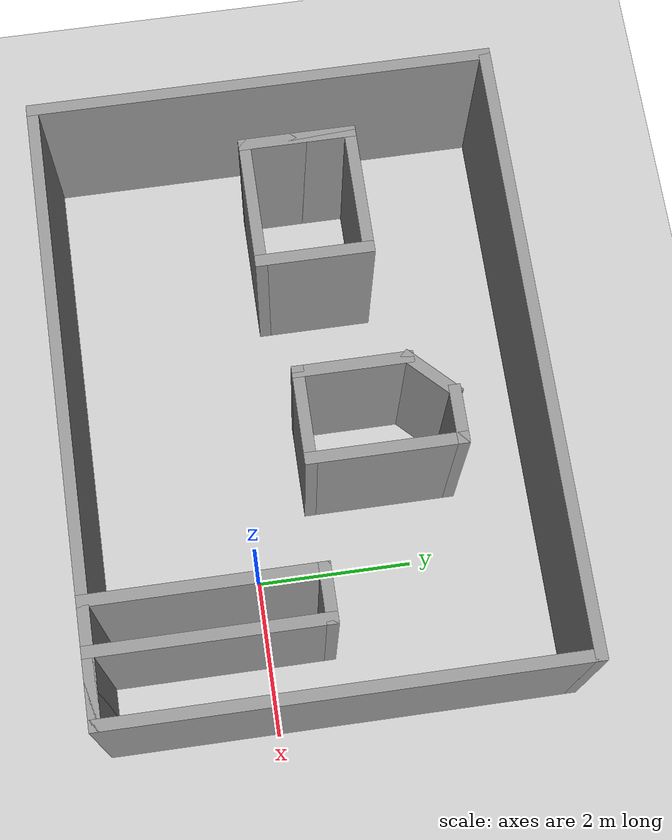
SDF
<sdf version="1.7">
 <world name="default">
  <light name="sun" type="directional">
   <pose>0 0 10 0 -0 0</pose>
   <diffuse>0.8 0.8 0.8 1</diffuse>
   <specular>0.2 0.2 0.2 1</specular>
   <attenuation>
    <range>1000</range>
    <constant>0.9</constant>
    <linear>0.01</linear>
    <quadratic>0.001</quadratic>
   </attenuation>
   <direction>-0.5 0.1 -0.9</direction>
   <spot><inner_angle>0</inner_angle><outer_angle>0</outer_angle><falloff>0</falloff></spot>
  </light>
  <model name="ground_plane">
   <static>1</static>
   <link name="link">
    <collision name="collision">
     <geometry><plane><normal>0 0 1</normal><size>100 100</size></plane></geometry>
     <surface>
      <contact><collide_bitmask>65535</collide_bitmask></contact>
      <friction><ode><mu>100</mu><mu2>50</mu2></ode></friction>
     </surface>
    </collision>
    <visual name="visual">
     <cast_shadows>0</cast_shadows>
     <geometry><plane><normal>0 0 1</normal><size>100 100</size></plane></geometry>
     <material>
      <script><uri>file://media/materials/scripts/gazebo.material</uri><name>Gazebo/Grey</name></script>
     </material>
    </visual>
   </link>
  </model>
  <gravity>0 0 -9.8</gravity>
  <magnetic_field>6e-06 2.3e-05 -4.2e-05</magnetic_field>
  <atmosphere type="adiabatic"/>
  <physics type="ode">
   <max_step_size>0.001</max_step_size>
   <real_time_factor>1</real_time_factor>
   <real_time_update_rate>1000</real_time_update_rate>
  </physics>
  <scene><ambient>0.4 0.4 0.4 1</ambient><background>0.7 0.7 0.7 1</background><shadows>1</shadows></scene>
  <spherical_coordinates>
   <surface_model>EARTH_WGS84</surface_model>
   <latitude_deg>0</latitude_deg>
   <longitude_deg>0</longitude_deg>
   <elevation>0</elevation>
   <heading_deg>0</heading_deg>
  </spherical_coordinates>
  <model name="Untitled">
   <pose>-2.03274 0.855463 0 0 -0 0</pose>
   <link name="Wall_13">
    <collision name="Wall_13_Collision">
     <geometry><box><size>8 0.15 2.5</size></box></geometry>
     <pose>0 0 1.25 0 -0 0</pose>
    </collision>
    <visual name="Wall_13_Visual">
     <pose>0 0 1.25 0 -0 0</pose>
     <geometry><box><size>8 0.15 2.5</size></box></geometry>
     <material>
      <script><uri>file://media/materials/scripts/gazebo.material</uri><name>Gazebo/Grey</name></script>
      <ambient>1 1 1 1</ambient>
     </material>
     <meta><layer>0</layer></meta>
    </visual>
    <pose>-0 -2.925 0 0 -0 0</pose>
   </link>
   <link name="Wall_14">
    <collision name="Wall_14_Collision">
     <geometry><box><size>6 0.15 2.5</size></box></geometry>
     <pose>0 0 1.25 0 -0 0</pose>
    </collision>
    <visual name="Wall_14_Visual">
     <pose>0 0 1.25 0 -0 0</pose>
     <geometry><box><size>6 0.15 2.5</size></box></geometry>
     <material>
      <script><uri>file://media/materials/scripts/gazebo.material</uri><name>Gazebo/Grey</name></script>
      <ambient>1 1 1 1</ambient>
     </material>
     <meta><layer>0</layer></meta>
    </visual>
    <pose>3.925 -0 0 0 -0 1.5708</pose>
   </link>
   <link name="Wall_15">
    <collision name="Wall_15_Collision">
     <geometry><box><size>8 0.15 2.5</size></box></geometry>
     <pose>0 0 1.25 0 -0 0</pose>
    </collision>
    <visual name="Wall_15_Visual">
     <pose>0 0 1.25 0 -0 0</pose>
     <geometry><box><size>8 0.15 2.5</size></box></geometry>
     <material>
      <script><uri>file://media/materials/scripts/gazebo.material</uri><name>Gazebo/Grey</name></script>
      <ambient>1 1 1 1</ambient>
     </material>
     <meta><layer>0</layer></meta>
    </visual>
    <pose>-0 2.925 0 0 -0 3.14159</pose>
   </link>
   <link name="Wall_16">
    <collision name="Wall_16_Collision">
     <geometry><box><size>6 0.15 2.5</size></box></geometry>
     <pose>0 0 1.25 0 -0 0</pose>
    </collision>
    <visual name="Wall_16_Visual">
     <pose>0 0 1.25 0 -0 0</pose>
     <geometry><box><size>6 0.15 2.5</size></box></geometry>
     <material>
      <script><uri>file://media/materials/scripts/gazebo.material</uri><name>Gazebo/Grey</name></script>
      <ambient>1 1 1 1</ambient>
     </material>
     <meta><layer>0</layer></meta>
    </visual>
    <pose>-3.925 -0 0 0 -0 -1.5708</pose>
   </link>
   <link name="Wall_31">
    <collision name="Wall_31_Collision">
     <geometry><box><size>1.25 0.15 2.5</size></box></geometry>
     <pose>0 0 1.25 0 -0 0</pose>
    </collision>
    <visual name="Wall_31_Visual">
     <pose>0 0 1.25 0 -0 0</pose>
     <geometry><box><size>1.25 0.15 2.5</size></box></geometry>
     <material>
      <script><uri>file://media/materials/scripts/gazebo.material</uri><name>Gazebo/Grey</name></script>
      <ambient>1 1 1 1</ambient>
     </material>
     <meta><layer>0</layer></meta>
    </visual>
    <pose>-3.0702 0.492325 0 0 -0 -1.5708</pose>
   </link>
   <link name="Wall_33">
    <collision name="Wall_33_Collision">
     <geometry><box><size>1.75 0.15 2.5</size></box></geometry>
     <pose>0 0 1.25 0 -0 0</pose>
    </collision>
    <visual name="Wall_33_Visual">
     <pose>0 0 1.25 0 -0 0</pose>
     <geometry><box><size>1.75 0.15 2.5</size></box></geometry>
     <material>
      <script><uri>file://media/materials/scripts/gazebo.material</uri><name>Gazebo/Grey</name></script>
      <ambient>1 1 1 1</ambient>
     </material>
     <meta><layer>0</layer></meta>
    </visual>
    <pose>-2.2702 1.04232 0 0 -0 0</pose>
   </link>
   <link name="Wall_36">
    <collision name="Wall_36_Collision">
     <geometry><box><size>1.5 0.15 2.5</size></box></geometry>
     <pose>0 0 1.25 0 -0 0</pose>
    </collision>
    <visual name="Wall_36_Visual">
     <pose>0 0 1.25 0 -0 0</pose>
     <geometry><box><size>1.5 0.15 2.5</size></box></geometry>
     <material>
      <script><uri>file://media/materials/scripts/gazebo.material</uri><name>Gazebo/Grey</name></script>
      <ambient>1 1 1 1</ambient>
     </material>
     <meta><layer>0</layer></meta>
    </visual>
    <pose>-1.4702 0.367325 0 0 -0 -1.5708</pose>
   </link>
   <link name="Wall_37">
    <collision name="Wall_37_Collision">
     <geometry><box><size>1.75 0.15 2.5</size></box></geometry>
     <pose>0 0 1.25 0 -0 0</pose>
    </collision>
    <visual name="Wall_37_Visual">
     <pose>0 0 1.25 0 -0 0</pose>
     <geometry><box><size>1.75 0.15 2.5</size></box></geometry>
     <material>
      <script><uri>file://media/materials/scripts/gazebo.material</uri><name>Gazebo/Grey</name></script>
      <ambient>1 1 1 1</ambient>
     </material>
     <meta><layer>0</layer></meta>
    </visual>
    <pose>-2.2702 -0.307675 0 0 -0 3.14159</pose>
   </link>
   <link name="Wall_38">
    <collision name="Wall_38_Collision">
     <geometry><box><size>1.5 0.15 2.5</size></box></geometry>
     <pose>0 0 1.25 0 -0 0</pose>
    </collision>
    <visual name="Wall_38_Visual">
     <pose>0 0 1.25 0 -0 0</pose>
     <geometry><box><size>1.5 0.15 2.5</size></box></geometry>
     <material>
      <script><uri>file://media/materials/scripts/gazebo.material</uri><name>Gazebo/Grey</name></script>
      <ambient>1 1 1 1</ambient>
     </material>
     <meta><layer>0</layer></meta>
    </visual>
    <pose>-3.0702 0.367325 0 0 -0 1.5708</pose>
   </link>
   <link name="Wall_41">
    <collision name="Wall_41_Collision">
     <geometry><box><size>1 0.15 2.5</size></box></geometry>
     <pose>0 0 1.25 0 -0 0</pose>
    </collision>
    <visual name="Wall_41_Visual">
     <pose>0 0 1.25 0 -0 0</pose>
     <geometry><box><size>1 0.15 2.5</size></box></geometry>
     <material>
      <script><uri>file://media/materials/scripts/gazebo.material</uri><name>Gazebo/Grey</name></script>
      <ambient>1 1 1 1</ambient>
     </material>
     <meta><layer>0</layer></meta>
    </visual>
    <pose>3.5 -2.925 0 0 -0 3.14159</pose>
   </link>
   <link name="Wall_42">
    <collision name="Wall_42_Collision">
     <geometry><box><size>3 0.15 2.5</size></box></geometry>
     <pose>0 0 1.25 0 -0 0</pose>
    </collision>
    <visual name="Wall_42_Visual">
     <pose>0 0 1.25 0 -0 0</pose>
     <geometry><box><size>3 0.15 2.5</size></box></geometry>
     <material>
      <script><uri>file://media/materials/scripts/gazebo.material</uri><name>Gazebo/Grey</name></script>
      <ambient>1 1 1 1</ambient>
     </material>
     <meta><layer>0</layer></meta>
    </visual>
    <pose>3.075 -1.5 0 0 -0 1.5708</pose>
   </link>
   <link name="Wall_43">
    <collision name="Wall_43_Collision">
     <geometry><box><size>0.75 0.15 2.5</size></box></geometry>
     <pose>0 0 1.25 0 -0 0</pose>
    </collision>
    <visual name="Wall_43_Visual">
     <pose>0 0 1.25 0 -0 0</pose>
     <geometry><box><size>0.75 0.15 2.5</size></box></geometry>
     <material>
      <script><uri>file://media/materials/scripts/gazebo.material</uri><name>Gazebo/Grey</name></script>
      <ambient>1 1 1 1</ambient>
     </material>
     <meta><layer>0</layer></meta>
    </visual>
    <pose>2.775 -0.075 0 0 -0 3.14159</pose>
   </link>
   <link name="Wall_44">
    <collision name="Wall_44_Collision">
     <geometry><box><size>3 0.15 2.5</size></box></geometry>
     <pose>0 0 1.25 0 -0 0</pose>
    </collision>
    <visual name="Wall_44_Visual">
     <pose>0 0 1.25 0 -0 0</pose>
     <geometry><box><size>3 0.15 2.5</size></box></geometry>
     <material>
      <script><uri>file://media/materials/scripts/gazebo.material</uri><name>Gazebo/Grey</name></script>
      <ambient>1 1 1 1</ambient>
     </material>
     <meta><layer>0</layer></meta>
    </visual>
    <pose>2.475 -1.5 0 0 -0 -1.5708</pose>
   </link>
   <link name="Wall_69">
    <collision name="Wall_69_Collision">
     <geometry><box><size>0.75 0.15 2.5</size></box></geometry>
     <pose>0 0 1.25 0 -0 0</pose>
    </collision>
    <visual name="Wall_69_Visual">
     <pose>0 0 1.25 0 -0 0</pose>
     <geometry><box><size>0.75 0.15 2.5</size></box></geometry>
     <material>
      <script><uri>file://media/materials/scripts/gazebo.material</uri><name>Gazebo/Grey</name></script>
      <ambient>1 1 1 1</ambient>
     </material>
     <meta><layer>0</layer></meta>
    </visual>
    <pose>0.833194 1.79435 0 0 -0 0</pose>
   </link>
   <link name="Wall_70">
    <collision name="Wall_70_Collision">
     <geometry><box><size>2 0.15 2.5</size></box></geometry>
     <pose>0 0 1.25 0 -0 0</pose>
    </collision>
    <visual name="Wall_70_Visual">
     <pose>0 0 1.25 0 -0 0</pose>
     <geometry><box><size>2 0.15 2.5</size></box></geometry>
     <material>
      <script><uri>file://media/materials/scripts/gazebo.material</uri><name>Gazebo/Grey</name></script>
      <ambient>1 1 1 1</ambient>
     </material>
     <meta><layer>0</layer></meta>
    </visual>
    <pose>1.13319 0.869352 0 0 -0 -1.5708</pose>
   </link>
   <link name="Wall_71">
    <collision name="Wall_71_Collision">
     <geometry><box><size>1.25 0.15 2.5</size></box></geometry>
     <pose>0 0 1.25 0 -0 0</pose>
    </collision>
    <visual name="Wall_71_Visual">
     <pose>0 0 1.25 0 -0 0</pose>
     <geometry><box><size>1.25 0.15 2.5</size></box></geometry>
     <material>
      <script><uri>file://media/materials/scripts/gazebo.material</uri><name>Gazebo/Grey</name></script>
      <ambient>1 1 1 1</ambient>
     </material>
     <meta><layer>0</layer></meta>
    </visual>
    <pose>0.583194 -0.055648 0 0 -0 3.14159</pose>
   </link>
   <link name="Wall_72">
    <collision name="Wall_72_Collision">
     <geometry><box><size>1.5 0.15 2.5</size></box></geometry>
     <pose>0 0 1.25 0 -0 0</pose>
    </collision>
    <visual name="Wall_72_Visual">
     <pose>0 0 1.25 0 -0 0</pose>
     <geometry><box><size>1.5 0.15 2.5</size></box></geometry>
     <material>
      <script><uri>file://media/materials/scripts/gazebo.material</uri><name>Gazebo/Grey</name></script>
      <ambient>1 1 1 1</ambient>
     </material>
     <meta><layer>0</layer></meta>
    </visual>
    <pose>0.033194 0.619352 0 0 -0 1.5708</pose>
   </link>
   <link name="Wall_73">
    <collision name="Wall_73_Collision">
     <geometry><box><size>0.857107 0.15 2.5</size></box></geometry>
     <pose>0 0 1.25 0 -0 0</pose>
    </collision>
    <visual name="Wall_73_Visual">
     <pose>0 0 1.25 0 -0 0</pose>
     <geometry><box><size>0.857107 0.15 2.5</size></box></geometry>
     <material>
      <script><uri>file://media/materials/scripts/gazebo.material</uri><name>Gazebo/Grey</name></script>
      <ambient>1 1 1 1</ambient>
     </material>
     <meta><layer>0</layer></meta>
    </visual>
    <pose>0.283194 1.54435 0 0 -0 0.785398</pose>
   </link>
   <static>1</static>
  </model>
 </world>
</sdf>
